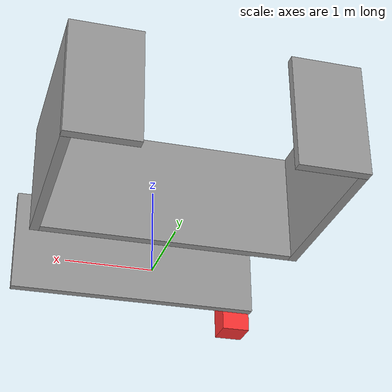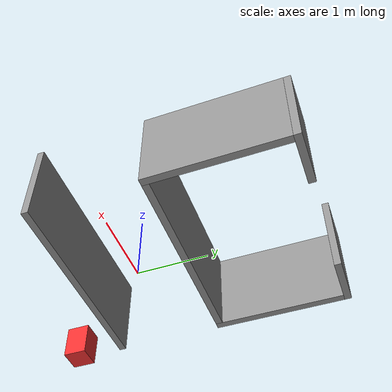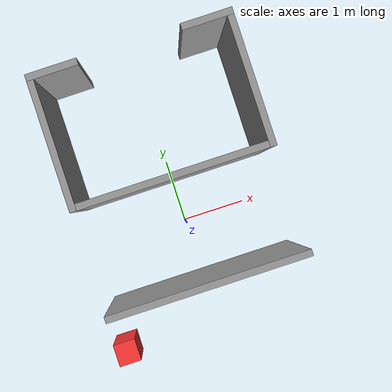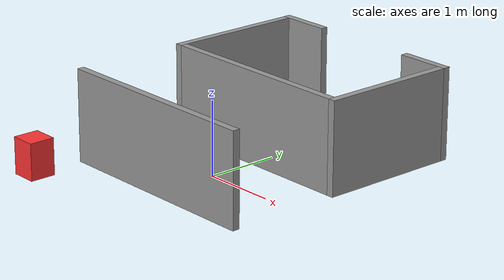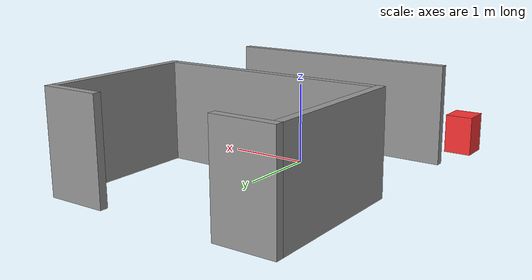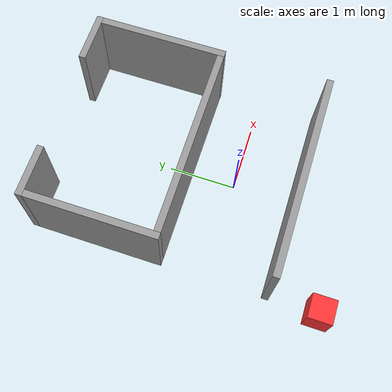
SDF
<?xml version="1.0" ?>
  <sdf version="1.5">
  <model name='office'>

    <static>1</static>

    <link name='Wall_10'>
        <pose>-1.125 2.6 0.625 0.0 0.0 0.0</pose>

        <visual name='Wall_10_Visual'>
            <pose>0 0 0 0 -0 0</pose>
            <geometry>
                <box>
                    <size>0.75 0.1 1.25</size>
                </box>
            </geometry>
              <material>
                <ambient>0.6 0.6 0.6 1</ambient>
                <diffuse>0.6 0.6 0.6 1</diffuse>
                <specular>0.6 0.6 0.6 1</specular>
              </material>
        <cast_shadows>0</cast_shadows>
      </visual>

      <collision name='Wall_10_Collision'>
        <max_contacts>10</max_contacts>
        <pose>0 0 0.0 0 0 0</pose>
        <geometry>
          <box>
            <size>0.75 0.1 1.25</size>
          </box>
        </geometry>
        <surface>
          <friction>
            <ode>
              <mu>1</mu>
              <mu2>1</mu2>
              <fdir1>0 0 0</fdir1>
              <slip1>0</slip1>
              <slip2>0</slip2>
            </ode>
          </friction>
          <bounce>
            <restitution_coefficient>0</restitution_coefficient>
            <threshold>1e+06</threshold>
          </bounce>
          <contact>
            <collide_without_contact>0</collide_without_contact>
            <collide_without_contact_bitmask>1</collide_without_contact_bitmask>
            <collide_bitmask>1</collide_bitmask>
            <ode>
              <soft_cfm>0</soft_cfm>
              <soft_erp>0.2</soft_erp>
              <kp>1e+13</kp>
              <kd>1</kd>
              <max_vel>0.01</max_vel>
              <min_depth>0</min_depth>
            </ode>
            <bullet>
              <split_impulse>1</split_impulse>
              <split_impulse_penetration_threshold>-0.01</split_impulse_penetration_threshold>
              <soft_cfm>0</soft_cfm>
              <soft_erp>0.2</soft_erp>
              <kp>1e+13</kp>
              <kd>1</kd>
            </bullet>
          </contact>
        </surface>
      </collision>
    </link>

    <link name='Wall_20'>
          <pose>1.125 2.6 0.625 0.0 0.0 0.0</pose>

          <visual name='Wall_20_Visual'>
              <pose>0 0 0 0 -0 0</pose>
              <geometry>
                  <box>
                      <size>0.75 0.1 1.25</size>
                  </box>
              </geometry>
              <material>
                <ambient>0.6 0.6 0.6 1</ambient>
                <diffuse>0.6 0.6 0.6 1</diffuse>
                <specular>0.6 0.6 0.6 1</specular>
              </material>
          <cast_shadows>0</cast_shadows>
        </visual>

        <collision name='Wall_20_Collision'>
          <max_contacts>10</max_contacts>
          <pose>0 0 0.0 0 0 0</pose>
          <geometry>
            <box>
              <size>0.75 0.1 1.25</size>
            </box>
          </geometry>
          <surface>
            <friction>
              <ode>
                <mu>1</mu>
                <mu2>1</mu2>
                <fdir1>0 0 0</fdir1>
                <slip1>0</slip1>
                <slip2>0</slip2>
              </ode>
            </friction>
            <bounce>
              <restitution_coefficient>0</restitution_coefficient>
              <threshold>1e+06</threshold>
            </bounce>
            <contact>
              <collide_without_contact>0</collide_without_contact>
              <collide_without_contact_bitmask>1</collide_without_contact_bitmask>
              <collide_bitmask>1</collide_bitmask>
              <ode>
                <soft_cfm>0</soft_cfm>
                <soft_erp>0.2</soft_erp>
                <kp>1e+13</kp>
                <kd>1</kd>
                <max_vel>0.01</max_vel>
                <min_depth>0</min_depth>
              </ode>
              <bullet>
                <split_impulse>1</split_impulse>
                <split_impulse_penetration_threshold>-0.01</split_impulse_penetration_threshold>
                <soft_cfm>0</soft_cfm>
                <soft_erp>0.2</soft_erp>
                <kp>1e+13</kp>
                <kd>1</kd>
              </bullet>
            </contact>
          </surface>
        </collision>
    </link>

    <link name='Wall_30'>
        <pose>-1.45 1.6 0.625 0.0 0.0 0.0</pose>

        <visual name='Wall_30_Visual'>
            <pose>0 0 0 0 -0 0</pose>
            <geometry>
                <box>
                    <size>0.1 1.9 1.25</size>
                </box>
            </geometry>
              <material>
                <ambient>0.6 0.6 0.6 1</ambient>
                <diffuse>0.6 0.6 0.6 1</diffuse>
                <specular>0.6 0.6 0.6 1</specular>
              </material>
        <cast_shadows>0</cast_shadows>
      </visual>

      <collision name='Wall_30_Collision'>
        <max_contacts>10</max_contacts>
        <pose>0 0 0.0 0 0 0</pose>
        <geometry>
          <box>
            <size>0.1 1.9 1.25</size>
          </box>
        </geometry>
        <surface>
          <friction>
            <ode>
              <mu>1</mu>
              <mu2>1</mu2>
              <fdir1>0 0 0</fdir1>
              <slip1>0</slip1>
              <slip2>0</slip2>
            </ode>
          </friction>
          <bounce>
            <restitution_coefficient>0</restitution_coefficient>
            <threshold>1e+06</threshold>
          </bounce>
          <contact>
            <collide_without_contact>0</collide_without_contact>
            <collide_without_contact_bitmask>1</collide_without_contact_bitmask>
            <collide_bitmask>1</collide_bitmask>
            <ode>
              <soft_cfm>0</soft_cfm>
              <soft_erp>0.2</soft_erp>
              <kp>1e+13</kp>
              <kd>1</kd>
              <max_vel>0.01</max_vel>
              <min_depth>0</min_depth>
            </ode>
            <bullet>
              <split_impulse>1</split_impulse>
              <split_impulse_penetration_threshold>-0.01</split_impulse_penetration_threshold>
              <soft_cfm>0</soft_cfm>
              <soft_erp>0.2</soft_erp>
              <kp>1e+13</kp>
              <kd>1</kd>
            </bullet>
          </contact>
        </surface>
      </collision>
    </link>

    <link name='Wall_40'>
        <pose>1.45 1.6 0.625 0.0 0.0 0.0</pose>

        <visual name='Wall_40_Visual'>
            <pose>0 0 0 0 -0 0</pose>
            <geometry>
                <box>
                    <size>0.1 1.9 1.25</size>
                </box>
            </geometry>
              <material>
                <ambient>0.6 0.6 0.6 1</ambient>
                <diffuse>0.6 0.6 0.6 1</diffuse>
                <specular>0.6 0.6 0.6 1</specular>
              </material>
        <cast_shadows>0</cast_shadows>
      </visual>

      <collision name='Wall_40_Collision'>
        <max_contacts>10</max_contacts>
        <pose>0 0 0.0 0 0 0</pose>
        <geometry>
          <box>
            <size>0.1 1.9 1.25</size>
          </box>
        </geometry>
        <surface>
          <friction>
            <ode>
              <mu>1</mu>
              <mu2>1</mu2>
              <fdir1>0 0 0</fdir1>
              <slip1>0</slip1>
              <slip2>0</slip2>
            </ode>
          </friction>
          <bounce>
            <restitution_coefficient>0</restitution_coefficient>
            <threshold>1e+06</threshold>
          </bounce>
          <contact>
            <collide_without_contact>0</collide_without_contact>
            <collide_without_contact_bitmask>1</collide_without_contact_bitmask>
            <collide_bitmask>1</collide_bitmask>
            <ode>
              <soft_cfm>0</soft_cfm>
              <soft_erp>0.2</soft_erp>
              <kp>1e+13</kp>
              <kd>1</kd>
              <max_vel>0.01</max_vel>
              <min_depth>0</min_depth>
            </ode>
            <bullet>
              <split_impulse>1</split_impulse>
              <split_impulse_penetration_threshold>-0.01</split_impulse_penetration_threshold>
              <soft_cfm>0</soft_cfm>
              <soft_erp>0.2</soft_erp>
              <kp>1e+13</kp>
              <kd>1</kd>
            </bullet>
          </contact>
        </surface>
      </collision>
    </link>

    <link name='Wall_50'>
        <pose>0.0 0.7 0.625 0.0 0.0 0.0</pose>

        <visual name='Wall_50_Visual'>
            <pose>0 0 0 0 -0 0</pose>
            <geometry>
                <box>
                    <size>2.8 0.1 1.25</size>
                </box>
            </geometry>
              <material>
                <ambient>0.6 0.6 0.6 1</ambient>
                <diffuse>0.6 0.6 0.6 1</diffuse>
                <specular>0.6 0.6 0.6 1</specular>
              </material>
        <cast_shadows>0</cast_shadows>
      </visual>

      <collision name='Wall_50_Collision'>
        <max_contacts>10</max_contacts>
        <pose>0 0 0.0 0 0 0</pose>
        <geometry>
          <box>
            <size>2.8 0.1 1.25</size>
          </box>
        </geometry>
        <surface>
          <friction>
            <ode>
              <mu>1</mu>
              <mu2>1</mu2>
              <fdir1>0 0 0</fdir1>
              <slip1>0</slip1>
              <slip2>0</slip2>
            </ode>
          </friction>
          <bounce>
            <restitution_coefficient>0</restitution_coefficient>
            <threshold>1e+06</threshold>
          </bounce>
          <contact>
            <collide_without_contact>0</collide_without_contact>
            <collide_without_contact_bitmask>1</collide_without_contact_bitmask>
            <collide_bitmask>1</collide_bitmask>
            <ode>
              <soft_cfm>0</soft_cfm>
              <soft_erp>0.2</soft_erp>
              <kp>1e+13</kp>
              <kd>1</kd>
              <max_vel>0.01</max_vel>
              <min_depth>0</min_depth>
            </ode>
            <bullet>
              <split_impulse>1</split_impulse>
              <split_impulse_penetration_threshold>-0.01</split_impulse_penetration_threshold>
              <soft_cfm>0</soft_cfm>
              <soft_erp>0.2</soft_erp>
              <kp>1e+13</kp>
              <kd>1</kd>
            </bullet>
          </contact>
        </surface>
      </collision>
    </link>

    <link name='Wall_60'>
        <pose>0.0 -0.9 0.625 0.0 0.0 0.0</pose>

        <visual name='Wall_60_Visual'>
            <pose>0 0 0 0 -0 0</pose>
            <geometry>
                <box>
                    <size>3.0 0.1 1.25</size>
                </box>
            </geometry>
              <material>
                <ambient>0.6 0.6 0.6 1</ambient>
                <diffuse>0.6 0.6 0.6 1</diffuse>
                <specular>0.6 0.6 0.6 1</specular>
              </material>
        <cast_shadows>0</cast_shadows>
      </visual>

      <collision name='Wall_60_Collision'>
        <max_contacts>10</max_contacts>
        <pose>0 0 0.0 0 0 0</pose>
        <geometry>
          <box>
            <size>3.0 0.1 1.25</size>
          </box>
        </geometry>
        <surface>
          <friction>
            <ode>
              <mu>1</mu>
              <mu2>1</mu2>
              <fdir1>0 0 0</fdir1>
              <slip1>0</slip1>
              <slip2>0</slip2>
            </ode>
          </friction>
          <bounce>
            <restitution_coefficient>0</restitution_coefficient>
            <threshold>1e+06</threshold>
          </bounce>
          <contact>
            <collide_without_contact>0</collide_without_contact>
            <collide_without_contact_bitmask>1</collide_without_contact_bitmask>
            <collide_bitmask>1</collide_bitmask>
            <ode>
              <soft_cfm>0</soft_cfm>
              <soft_erp>0.2</soft_erp>
              <kp>1e+13</kp>
              <kd>1</kd>
              <max_vel>0.01</max_vel>
              <min_depth>0</min_depth>
            </ode>
            <bullet>
              <split_impulse>1</split_impulse>
              <split_impulse_penetration_threshold>-0.01</split_impulse_penetration_threshold>
              <soft_cfm>0</soft_cfm>
              <soft_erp>0.2</soft_erp>
              <kp>1e+13</kp>
              <kd>1</kd>
            </bullet>
          </contact>
        </surface>
      </collision>
    </link>

    <!-- Unknown obstacle for hybrid A* + Bug0 testing -->
    <link name='Unknown_Box_01'>
      <pose>-1.5 -1.65 0.25 0 0 0</pose>

      <visual name='Unknown_Box_01_Visual'>
        <geometry>
          <box>
            <size>0.35 0.35 0.50</size>
          </box>
        </geometry>
        <material>
          <ambient>1.0 0.2 0.2 1</ambient>
          <diffuse>1.0 0.2 0.2 1</diffuse>
          <specular>0.2 0.2 0.2 1</specular>
        </material>
      </visual>

      <collision name='Unknown_Box_01_Collision'>
        <geometry>
          <box>
            <size>0.35 0.35 0.50</size>
          </box>
        </geometry>
      </collision>
    </link>

  </model>
  </sdf>
